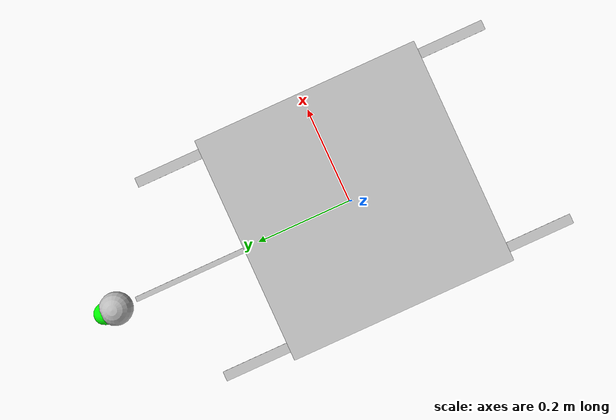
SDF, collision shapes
<?xml version="1.0" encoding="UTF-8"?>
<sdf version='1.9'>
  <model name='holybro_x500_dual'>
    <pose>0 0 0.217 0 0 1.57</pose>
    <self_collide>false</self_collide>
    <static>false</static>
    <link name="base_link">
     <inertial>
        <pose>0 0 0 0 0 0</pose>
        <mass>2.5</mass>
        <inertia>
          <ixx>0.0411</ixx>
          <ixy>0</ixy>
          <ixz>0</ixz>
          <iyy>0.0411</iyy>
          <iyz>0</iyz>
          <izz>0.05</izz>
        </inertia>
      </inertial>
      <gravity>true</gravity>
      <velocity_decay/>
      <visual name="base_link_visual">
        <pose>0 0 0 0 0 0</pose>
        <geometry>
          <mesh>
            <scale>1 1 1</scale>
            <uri>model://holybro_x500_dual/meshes/uav_model_motors.dae</uri>
          </mesh>
        </geometry>
      </visual>
      <!-- Collision definition -->
      <collision name="base_link_collision_0">
        <pose> 0 0 -0.076276 0 0 0</pose>
        <geometry>
          <box>
            <size>0.40 0.40 0.278 </size>
          </box>
        </geometry>
        <surface>
          <contact>
            <ode>
              <min_depth>0.001</min_depth>
              <max_vel>0</max_vel>
            </ode>
          </contact>
          <friction>
            <ode/>
          </friction>
        </surface>
      </collision>
<!-- Collision definition END-->
<!-- Flight Sensors  -->
      <sensor name="air_pressure_sensor" type="air_pressure">
        <always_on>1</always_on>
        <update_rate>50</update_rate>
        <air_pressure>
          <pressure>
            <noise type="gaussian">
              <mean>0</mean>
              <stddev>0.01</stddev>
            </noise>
          </pressure>
        </air_pressure>
      </sensor>

      <sensor name="imu_sensor" type="imu">
        <always_on>1</always_on>
        <update_rate>250</update_rate>
      </sensor>
<!-- Flight Sensors  -->
    </link>
<!-- Propellers definition -->
    <link name="rotor_0">
        <gravity>true</gravity>
        <self_collide>false</self_collide>
        <velocity_decay/>
        <pose>0.176876 -0.176876 0.06 0 0 0</pose>
        <inertial>
            <mass>0.016076923076923075</mass>
            <inertia>
              <ixx>3.8464910483993325e-07</ixx>
              <iyy>2.6115851691700804e-05</iyy>
              <izz>2.649858234714004e-05</izz>
            </inertia>
        </inertial>
       <visual name="rotor_0_visual">
        <pose>0 0 0 0 0 0</pose>
        <geometry>
          <mesh>
            <scale>1 1 1</scale>
            <uri>model://holybro_x500_dual/meshes/holybro_propeller_ccw.dae</uri>
          </mesh>
        </geometry>
      </visual>
      <collision name="rotor_0_collision">
        <pose>0 0 0 0 0 0 </pose>
        <geometry>
          <box>
            <size>0.2792307692307692 0.016923076923076923 0.0008461538461538462</size>
          </box>
        </geometry>
        <surface>
          <contact>
            <ode>
              <min_depth>0.001</min_depth>
              <max_vel>0</max_vel>
            </ode>
          </contact>
          <friction>
            <ode/>
          </friction>
        </surface>
      </collision>
    </link>
    <joint name="rotor_0_joint" type="revolute">
      <parent>base_link</parent>
      <child>rotor_0</child>
      <axis>
        <xyz>0 0 1</xyz>
        <limit>
          <lower>-1e+16</lower>
          <upper>1e+16</upper>
        </limit>
        <dynamics>
          <spring_reference>0</spring_reference>
          <spring_stiffness>0</spring_stiffness>
        </dynamics>
      </axis>
    </joint>

    <link name="rotor_1">
        <gravity>true</gravity>
        <self_collide>false</self_collide>
        <velocity_decay/>
        <pose>-0.176876 0.176876 0.06 0 0 0</pose>
        <inertial>
            <mass>0.016076923076923075</mass>
            <inertia>
              <ixx>3.8464910483993325e-07</ixx>
              <iyy>2.6115851691700804e-05</iyy>
              <izz>2.649858234714004e-05</izz>
            </inertia>
        </inertial>
       <visual name="rotor_1_visual">
        <pose>0 0 0 0 0 0</pose>
        <geometry>
          <mesh>
            <scale>1 1 1</scale>
            <uri>model://holybro_x500_dual/meshes/holybro_propeller_ccw.dae</uri>
          </mesh>
        </geometry>
      </visual>
      <collision name="rotor_1_collision">
        <pose>0 0 0 0 0 0 </pose>
        <geometry>
          <box>
            <size>0.2792307692307692 0.016923076923076923 0.0008461538461538462</size>
          </box>
        </geometry>
        <surface>
          <contact>
            <ode>
              <min_depth>0.001</min_depth>
              <max_vel>0</max_vel>
            </ode>
          </contact>
          <friction>
            <ode/>
          </friction>
        </surface>
      </collision>
    </link>
    <joint name="rotor_1_joint" type="revolute">
      <parent>base_link</parent>
      <child>rotor_1</child>
      <axis>
        <xyz>0 0 1</xyz>
        <limit>
          <lower>-1e+16</lower>
          <upper>1e+16</upper>
        </limit>
        <dynamics>
          <spring_reference>0</spring_reference>
          <spring_stiffness>0</spring_stiffness>
        </dynamics>
      </axis>
    </joint>

    <link name="rotor_2">
        <gravity>true</gravity>
        <self_collide>false</self_collide>
        <velocity_decay/>
        <pose> 0.176876 0.176876 0.06 0 0 0</pose>
        <inertial>
            <mass>0.016076923076923075</mass>
            <inertia>
              <ixx>3.8464910483993325e-07</ixx>
              <iyy>2.6115851691700804e-05</iyy>
              <izz>2.649858234714004e-05</izz>
            </inertia>
        </inertial>
       <visual name="rotor_2_visual">
        <pose>0 0 0 0 0 0</pose>
        <geometry>
          <mesh>
            <scale>1 1 1</scale>
            <uri>model://holybro_x500_dual/meshes/holybro_propeller_cw.dae</uri>
          </mesh>
        </geometry>
      </visual>
      <collision name="rotor_2_collision">
        <pose>0 0 0 0 0 0 </pose>
        <geometry>
          <box>
            <size>0.2792307692307692 0.016923076923076923 0.0008461538461538462</size>
          </box>
        </geometry>
        <surface>
          <contact>
            <ode>
              <min_depth>0.001</min_depth>
              <max_vel>0</max_vel>
            </ode>
          </contact>
          <friction>
            <ode/>
          </friction>
        </surface>
      </collision>
    </link>
    <joint name="rotor_2_joint" type="revolute">
      <parent>base_link</parent>
      <child>rotor_2</child>
      <axis>
        <xyz>0 0 1</xyz>
        <limit>
          <lower>-1e+16</lower>
          <upper>1e+16</upper>
        </limit>
        <dynamics>
          <spring_reference>0</spring_reference>
          <spring_stiffness>0</spring_stiffness>
        </dynamics>
      </axis>
    </joint>

    <link name="rotor_3">
        <gravity>true</gravity>
        <self_collide>false</self_collide>
        <velocity_decay/>
        <pose> -0.176876 -0.176876 0.06 0 0 0</pose>
        <inertial>
            <mass>0.016076923076923075</mass>
            <inertia>
              <ixx>3.8464910483993325e-07</ixx>
              <iyy>2.6115851691700804e-05</iyy>
              <izz>2.649858234714004e-05</izz>
            </inertia>
        </inertial>
       <visual name="rotor_3_visual">
        <pose>0 0 0 0 0 0</pose>
        <geometry>
          <mesh>
            <scale>1 1 1</scale>
            <uri>model://holybro_x500_dual/meshes/holybro_propeller_cw.dae</uri>
          </mesh>
        </geometry>
      </visual>
      <collision name="rotor_3_collision">
        <pose>0 0 0 0 0 0 </pose>
        <geometry>
          <box>
            <size>0.2792307692307692 0.016923076923076923 0.0008461538461538462</size>
          </box>
        </geometry>
        <surface>
          <contact>
            <ode>
              <min_depth>0.001</min_depth>
              <max_vel>0</max_vel>
            </ode>
          </contact>
          <friction>
            <ode/>
          </friction>
        </surface>
      </collision>
    </link>
    <joint name="rotor_3_joint" type="revolute">
      <parent>base_link</parent>
      <child>rotor_3</child>
      <axis>
        <xyz>0 0 1</xyz>
        <limit>
          <lower>-1e+16</lower>
          <upper>1e+16</upper>
        </limit>
        <dynamics>
          <spring_reference>0</spring_reference>
          <spring_stiffness>0</spring_stiffness>
        </dynamics>
      </axis>
    </joint>
<!-- Propellers definition END-->
<!-- Horizontal thrusters -->
    <link name="rotor_5">
        <gravity>true</gravity>
        <self_collide>false</self_collide>
        <velocity_decay/>
        <pose> 0.0985 0 0.031 0 -1.57 0</pose>
       <inertial>
          <mass>0.016076923076923075</mass>
          <inertia>
            <ixx>1.349858234714004e-05</ixx>
            <iyy>1.349858234714004e-05</iyy>
            <izz>1.0464910483993325e-07</izz>
          </inertia>
        </inertial>
       <visual name="rotor_5_visual">
        <pose>0 0 0 0 0 0</pose>
        <geometry>
          <mesh>
            <scale>1 1 1</scale>
            <uri>model://holybro_x500_dual/meshes/50mm_blade_motor_z.dae</uri>
          </mesh>
        </geometry>
      </visual>
      <collision name="rotor_5_collision">
        <pose>0 0 0 0 0 0 </pose>
        <geometry>
          <box>
            <size>0.0008461538461538462 0.016923076923076923 0.004</size>
          </box>
        </geometry>
        <surface>
          <contact>
            <ode>
              <min_depth>0.001</min_depth>
              <max_vel>0</max_vel>
            </ode>
          </contact>
          <friction>
            <ode/>
          </friction>
        </surface>
      </collision>
    </link>
    <joint name="rotor_5_joint" type="revolute">
      <parent>base_link</parent>
      <child>rotor_5</child>
      <axis>
        <xyz>0 0 1 </xyz>
        <limit>
          <lower>-1e+16</lower>
          <upper>1e+16</upper>
        </limit>
        <dynamics>
          <spring_reference>0</spring_reference>
          <spring_stiffness>0</spring_stiffness>
        </dynamics>
      </axis>
    </joint>

    <link name="rotor_4">
        <gravity>true</gravity>
        <self_collide>false</self_collide>
        <velocity_decay/>
        <pose> -0.0985 0 0.031 0 1.57 0 </pose>
        <inertial>
          <mass>0.016076923076923075</mass>
          <inertia>
            <ixx>1.349858234714004e-05</ixx>
            <iyy>1.349858234714004e-05</iyy>
            <izz>1.0464910483993325e-07</izz>
        </inertia>
        </inertial>
       <visual name="rotor_4_visual">
        <pose>0 0 0 0 0 0</pose>
        <geometry>
          <mesh>
            <scale>1 1 1</scale>
            <uri>model://holybro_x500_dual/meshes/50mm_blade_motor_z.dae</uri>
          </mesh>
        </geometry>
      </visual>
      <collision name="rotor_4_collision">
        <pose>0 0 0 0 0 0 </pose>
        <geometry>
          <box>
            <size>0.0008461538461538462 0.016923076923076923 0.004</size>
          </box>
        </geometry>
        <surface>
          <contact>
            <ode>
              <min_depth>0.001</min_depth>
              <max_vel>0</max_vel>
            </ode>
          </contact>
          <friction>
            <ode/>
          </friction>
        </surface>
      </collision>
    </link>

    <joint name="rotor_4_joint" type="revolute">
      <parent>base_link</parent>
      <child>rotor_4</child>
      <axis>
        <xyz>0 0 1</xyz>
        <limit>
          <lower>-1e+16</lower>
          <upper>1e+16</upper>
        </limit>
        <dynamics>
          <spring_reference>0</spring_reference>
          <spring_stiffness>0</spring_stiffness>
        </dynamics>
      </axis>
    </joint>
<!-- Manipulator arm  -->
    <link name="manipulator_arm">
        <gravity>true</gravity>
        <self_collide>false</self_collide>
        <velocity_decay/>
        <pose> 0.40 0 -0.0086 0 0 0 </pose>
        <inertial>
          <pose> -0.207 0 0 0 0 0</pose>
          <mass>0.16</mass>
          <inertia>
            <ixx>1.8727e-05</ixx>
            <iyy>0.0027</iyy>
            <izz>0.0027</izz>
        </inertia>
        </inertial>
       <visual name="manipulator_arm_visual">
        <pose>0 0 0 0 0 0</pose>
        <geometry>
          <mesh>
            <scale>1 1 1</scale>
            <uri>model://holybro_x500_dual/meshes/manipulator_arm.dae</uri>
          </mesh>
        </geometry>
      </visual>
      <collision name="manipulator_arm_collision">
        <pose> -0.207 0 0 0 0 0 </pose>
        <geometry>
          <box>
            <size>0.444 0.009 0.009 </size>
          </box>
        </geometry>
        <surface>
          <contact>
            <ode>
              <min_depth>0.001</min_depth>
              <max_vel>0</max_vel>
            </ode>
          </contact>
          <friction>
            <ode/>
          </friction>
        </surface>
      </collision>
    </link>

    <joint name="manipulator_arm_joint" type="fixed">
      <parent>base_link</parent>
      <child>manipulator_arm</child>
    </joint>

     <link name="manipulator_tip">
        <gravity>true</gravity>
        <self_collide>false</self_collide>
        <velocity_decay/>
        <pose> 0.420 0 -0.0086 0 0 3.14159 </pose>
        <inertial>
          <pose>-0.030522 0 0 0 0 0 </pose>
          <mass>0.05</mass>
          <inertia>
            <ixx>1.8225e-05</ixx>
            <iyy>2.4614e-05</iyy>
            <izz>2.4614e-05</izz>
        </inertia>
        </inertial>
       <visual name="manipulator_tip_visual">
        <pose>0 0 0 0 0 0</pose>
        <geometry>
          <mesh>
            <scale>1 1 1</scale>
            <uri>model://holybro_x500_dual/meshes/manipulator_tip.dae</uri>
          </mesh>
        </geometry>
      </visual>
      <collision name="manipulator_tip_collision">
        <pose>-0.034296 0 0 0 0 0 </pose>
        <geometry>
          <sphere>
            <radius>0.03</radius> <!-- Adjust the radius as needed -->
          </sphere>
        </geometry>
        <surface>
          <contact>
            <ode>
              <min_depth>0.001</min_depth>
              <max_vel>0</max_vel>
            </ode>
          </contact>
          <friction>
            <ode/>
          </friction>
        </surface>
      </collision>
    </link>

    <joint name="manipulator_tip_joint" type="fixed">
      <parent>manipulator_arm</parent>
      <child>manipulator_tip</child>
      <pose> 0 0 0 0 -1.5708 0 </pose>
        <sensor name= 'forcetorque' type='force_torque'>
            <always_on>true</always_on>
            <update_rate>100.0</update_rate>
            <visualize>true</visualize>
            <force_torque>
                <frame>sensor</frame>
                <measure_direction>child_to_parent</measure_direction>
            </force_torque>
            <topic>leptrino_force_sensor/sensor_wrench</topic>
        </sensor>
    </joint>

    <frame name="caster_frame" attached_to='manipulator_tip'>
    </frame>

<!--caster wheel-->
    <link name='caster'>
        <pose>0.475 0 -0.0086  0 0 0 </pose>
        <velocity_decay/>
            <inertial>
            <mass>0.001</mass>
            <inertia>
                <ixx>0.1</ixx>
                <ixy>0</ixy>
                <ixz>0</ixz>
                <iyy>0.1</iyy>
                <iyz>0</iyz>
                <izz>0.1</izz>
            </inertia>
        </inertial>
        <visual name='visual'>
            <geometry>
                <sphere>
                    <radius>0.02</radius>
                </sphere>
            </geometry>
            <material>
                <ambient>0.0 1 0.0 1</ambient>
                <diffuse>0.0 1 0.0 1</diffuse>
                <specular>0.0 1 0.0 1</specular>
            </material>
        </visual>
        <collision name='collision'>
            <geometry>
              <sphere>
                  <radius>0.02</radius>
              </sphere>
            </geometry>
            <surface>
              <friction>
                <ode>
                  <mu>0.6</mu>  <!-- Typical coefficient for metal cast -->
                  <mu2>0.6</mu2> <!-- Secondary coefficient, often same as mu for isotropic materials -->
                  <fdir1>0 0 0</fdir1> <!-- Automatic computation -->
                  <slip1>0.0</slip1> <!-- No slip for realistic static friction -->
                  <slip2>0.0</slip2> <!-- No slip for realistic static friction -->
                </ode>
                <bullet>
                  <friction>
                    <friction>0.6</friction> <!-- Primary friction coefficient -->
                    <friction2>0.6</friction2> <!-- Secondary friction coefficient -->
                    <fdir1>0 0 0</fdir1> <!-- Automatic computation -->
                    <rolling_friction>0.01</rolling_friction> <!-- No rolling friction -->
                  </friction>
                </bullet>
              </friction>
            </surface>
        </collision>
    </link>
<!--different type of joints ball joint--> <!--defult value is the child-->
    <joint name='chassis' type='ball'>
      <parent>caster_frame</parent>
      <child>caster</child>
    </joint>

<!-- Manipulator arm  END -->
<!-- Additional Rotors 4,5END -->

   <plugin filename="gz-sim-multicopter-motor-model-system" name="gz::sim::systems::MulticopterMotorModel">
      <jointName>rotor_0_joint</jointName>
      <linkName>rotor_0</linkName>
      <turningDirection>ccw</turningDirection>
      <timeConstantUp>0.0125</timeConstantUp>
      <timeConstantDown>0.025</timeConstantDown>
      <maxRotVelocity>10920.0</maxRotVelocity>
      <motorConstant>12.1311e-06</motorConstant>
      <momentConstant>0.016</momentConstant>
      <commandSubTopic>command/motor_speed</commandSubTopic>
      <motorNumber>0</motorNumber>
      <rotorDragCoefficient>8.06428e-05</rotorDragCoefficient>
      <rollingMomentCoefficient>1e-06</rollingMomentCoefficient>
      <rotorVelocitySlowdownSim>10</rotorVelocitySlowdownSim>
      <motorType>velocity</motorType>
    </plugin>
    <plugin filename="gz-sim-multicopter-motor-model-system" name="gz::sim::systems::MulticopterMotorModel">
      <jointName>rotor_1_joint</jointName>
      <linkName>rotor_1</linkName>
      <turningDirection>ccw</turningDirection>
      <timeConstantUp>0.0125</timeConstantUp>
      <timeConstantDown>0.025</timeConstantDown>
     <maxRotVelocity>10920.0</maxRotVelocity>
      <motorConstant>12.1311e-06</motorConstant>
      <momentConstant>0.016</momentConstant>
      <commandSubTopic>command/motor_speed</commandSubTopic>
      <motorNumber>1</motorNumber>
      <rotorDragCoefficient>8.06428e-05</rotorDragCoefficient>
      <rollingMomentCoefficient>1e-06</rollingMomentCoefficient>
      <rotorVelocitySlowdownSim>10</rotorVelocitySlowdownSim>
      <motorType>velocity</motorType>
    </plugin>
    <plugin filename="gz-sim-multicopter-motor-model-system" name="gz::sim::systems::MulticopterMotorModel">
      <jointName>rotor_2_joint</jointName>
      <linkName>rotor_2</linkName>
      <turningDirection>cw</turningDirection>
      <timeConstantUp>0.0125</timeConstantUp>
      <timeConstantDown>0.025</timeConstantDown>
      <maxRotVelocity>10920.0</maxRotVelocity>
      <motorConstant>12.1311e-06</motorConstant>
      <momentConstant>0.016</momentConstant>
      <commandSubTopic>command/motor_speed</commandSubTopic>
      <motorNumber>2</motorNumber>
      <rotorDragCoefficient>8.06428e-05</rotorDragCoefficient>
      <rollingMomentCoefficient>1e-06</rollingMomentCoefficient>
      <rotorVelocitySlowdownSim>10</rotorVelocitySlowdownSim>
      <motorType>velocity</motorType>
    </plugin>
    <plugin filename="gz-sim-multicopter-motor-model-system" name="gz::sim::systems::MulticopterMotorModel">
      <jointName>rotor_3_joint</jointName>
      <linkName>rotor_3</linkName>
      <turningDirection>cw</turningDirection>
      <timeConstantUp>0.0125</timeConstantUp>
      <timeConstantDown>0.025</timeConstantDown>
     <maxRotVelocity>10920.0</maxRotVelocity>
      <motorConstant>12.1311e-06</motorConstant>
      <momentConstant>0.016</momentConstant>
      <commandSubTopic>command/motor_speed</commandSubTopic>
      <motorNumber>3</motorNumber>
      <rotorDragCoefficient>8.06428e-05</rotorDragCoefficient>
      <rollingMomentCoefficient>1e-06</rollingMomentCoefficient>
      <rotorVelocitySlowdownSim>10</rotorVelocitySlowdownSim>
      <motorType>velocity</motorType>
    </plugin>

    <!-- Horizontal thrusters -->
    <plugin filename="gz-sim-multicopter-motor-model-system" name="gz::sim::systems::MulticopterMotorModel">
      <jointName>rotor_4_joint</jointName>
      <linkName>rotor_4</linkName>
      <turningDirection>ccw</turningDirection>
      <timeConstantUp>0.0125</timeConstantUp>
      <timeConstantDown>0.025</timeConstantDown>
      <maxRotVelocity>1000.0</maxRotVelocity>
      <motorConstant>9.54858e-06</motorConstant>
      <momentConstant>0.016</momentConstant>
      <commandSubTopic>command/motor_speed</commandSubTopic>
      <motorNumber>4</motorNumber>
      <rotorDragCoefficient>8.06428e-05</rotorDragCoefficient>
      <rollingMomentCoefficient>1e-06</rollingMomentCoefficient>
      <rotorVelocitySlowdownSim>10</rotorVelocitySlowdownSim>
      <motorType>velocity</motorType>
    </plugin>

    <plugin filename="gz-sim-multicopter-motor-model-system" name="gz::sim::systems::MulticopterMotorModel">
      <jointName>rotor_5_joint</jointName>
      <linkName>rotor_5</linkName>
      <turningDirection>ccw</turningDirection>
      <timeConstantUp>0.0125</timeConstantUp>
      <timeConstantDown>0.025</timeConstantDown>
      <maxRotVelocity>1000.0</maxRotVelocity>
      <motorConstant>9.54858e-06</motorConstant>
      <momentConstant>0.016</momentConstant>
      <commandSubTopic>command/motor_speed</commandSubTopic>
      <motorNumber>5</motorNumber>
      <rotorDragCoefficient>8.06428e-05</rotorDragCoefficient>
      <rollingMomentCoefficient>1e-06</rollingMomentCoefficient>
      <rotorVelocitySlowdownSim>10</rotorVelocitySlowdownSim>
      <motorType>velocity</motorType>
    </plugin>
<!-- Horizontal thrusters END-->

  </model>
</sdf>
